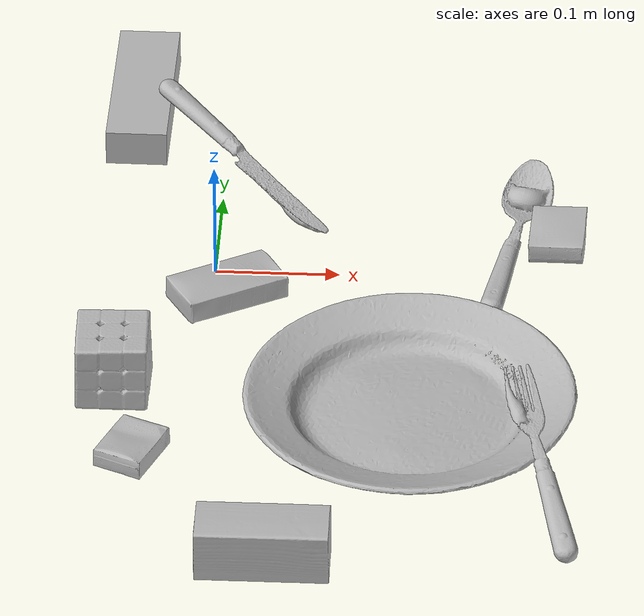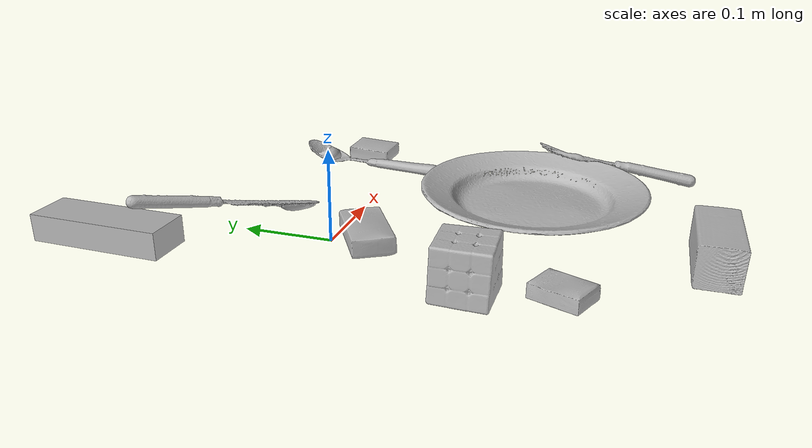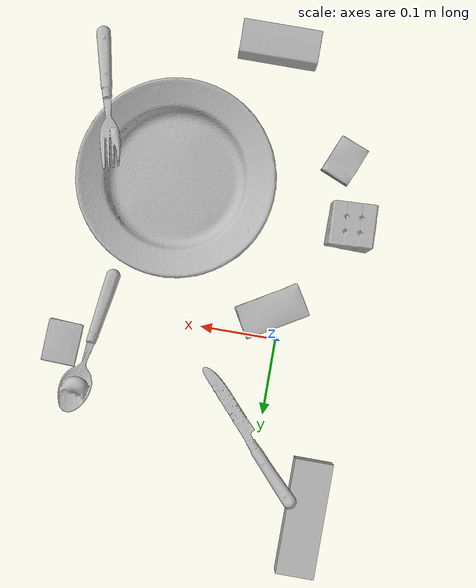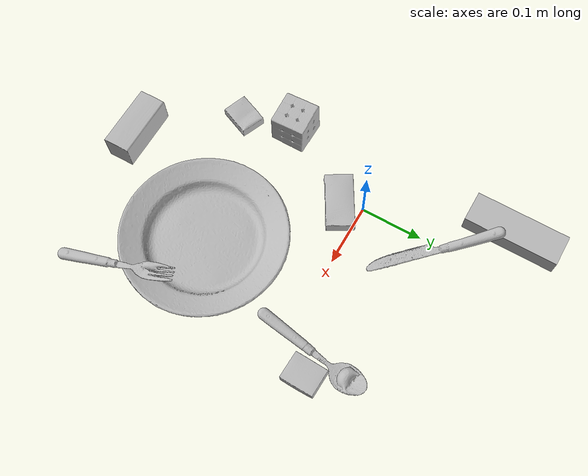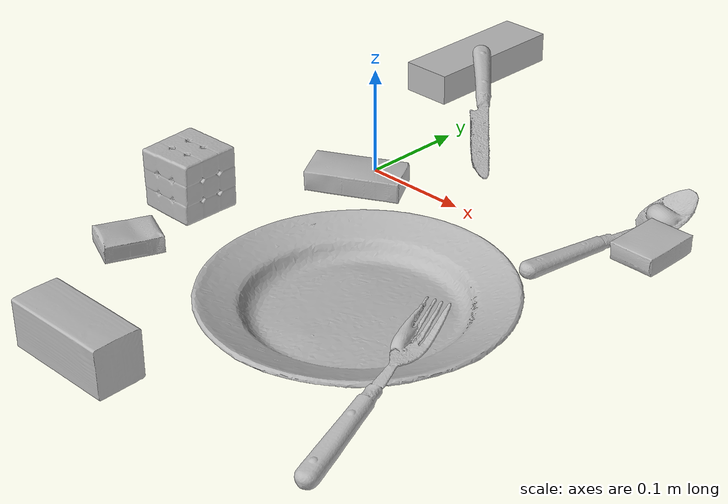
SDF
<sdf version="1.4">
  <world name="default">
    <light name="light1" type="point">
      <pose>0 0 1 0 0 0</pose>
      <diffuse>3 3 3 1</diffuse>
      <specular>3 3 3 1</specular>
    </light>
    <light name="light2" type="point">
      <pose>0 0.5 2 0 0 0</pose>
      <diffuse>1 1 1 1</diffuse>
      <specular>1 1 1 1</specular>
    </light>
    <light name="light3" type="point">
      <pose>0 0.5 2 0 0 0</pose>
      <diffuse>3 3 3 1</diffuse>
      <specular>3 3 3 1</specular>
    </light>
    <scene>
      <ambient>0.7 0.7 0.7</ambient>
    </scene>
    <model name="box11">
      <link name="link_box11">
        <collision name="default">
          <geometry>
            <mesh>
              <uri>model://cracker_box/collision_meshes/collision.obj</uri>
              <scale>0.25 0.25 0.25</scale>
            </mesh>
          </geometry>
          <surface>
            <friction>
              <ode>
                <mu>0.5</mu>
                <mu2>0.5</mu2>
              </ode>
            </friction>
          <contact>
        <ode>
            <max_vel>0</max_vel>
            <min_depth>0.0001</min_depth>
            <kp>1e8</kp>
        </ode>
    </contact></surface>
        </collision>
        <visual name="default">
          <geometry>
            <mesh>
              <uri>model://cracker_box/visual_meshes/visual.dae</uri>
              <scale>0.25 0.25 0.25</scale>
            </mesh>
          </geometry>
        </visual>
        <inertial>
          <mass>0.022244147956371307</mass>
          <pose>0.00023660442093387246 6.358561950037256e-05 -0.00042573834070935845 -0.00031620774024180285 -0.011106489600345375 0.0025467943041161943</pose>
          <inertia>
            <ixx>3.5361988e-06</ixx>
            <iyy>5.838959e-06</iyy>
            <izz>8.33273e-06</izz>
            <ixy>0</ixy>
            <ixz>0</ixz>
            <iyz>0</iyz>
          </inertia>
        </inertial>
      </link>
      <pose>-0.0495322048664093 -0.24574363231658936 0.009096031077206135 -0.014049779717464975 -0.00501658847854462 -1.9674261469025252</pose>
    </model>
    <model name="box12">
      <link name="link_box12">
        <collision name="default">
          <geometry>
            <mesh>
              <uri>model://wood_block/collision_meshes/collision.obj</uri>
              <scale>0.5 0.5 0.5</scale>
            </mesh>
          </geometry>
          <surface>
            <friction>
              <ode>
                <mu>0.5</mu>
                <mu2>0.5</mu2>
              </ode>
            </friction>
          <contact>
        <ode>
            <max_vel>0</max_vel>
            <min_depth>0.0001</min_depth>
            <kp>1e8</kp>
        </ode>
    </contact></surface>
        </collision>
        <visual name="default">
          <geometry>
            <mesh>
              <uri>model://wood_block/visual_meshes/visual.dae</uri>
              <scale>0.5 0.5 0.5</scale>
            </mesh>
          </geometry>
        </visual>
        <inertial>
          <mass>0.19826212525367737</mass>
          <pose>-2.9066577553749084e-06 -0.00028540476341731846 0.00013204291462898254 -0.05221087153268513 -0.0051926957009938435 -0.006861378574469354</pose>
          <inertia>
            <ixx>6.632619e-05</ixx>
            <iyy>0.00020952444</iyy>
            <izz>0.0002087407</izz>
            <ixy>0</ixy>
            <ixz>0</ixz>
            <iyz>0</iyz>
          </inertia>
        </inertial>
      </link>
      <pose>0.059908587485551834 -0.3779696524143219 0.0226292721927166 -0.005208509598448606 0.005718674671938656 -3.1367635709851496</pose>
    </model>
    <model name="box13">
      <link name="link_box13">
        <collision name="default">
          <geometry>
            <mesh>
              <uri>model://pudding_box/collision_meshes/collision.obj</uri>
              <scale>0.5 0.5 0.5</scale>
            </mesh>
          </geometry>
          <surface>
            <friction>
              <ode>
                <mu>0.5</mu>
                <mu2>0.5</mu2>
              </ode>
            </friction>
          <contact>
        <ode>
            <max_vel>0</max_vel>
            <min_depth>0.0001</min_depth>
            <kp>1e8</kp>
        </ode>
    </contact></surface>
        </collision>
        <visual name="default">
          <geometry>
            <mesh>
              <uri>model://pudding_box/visual_meshes/visual.dae</uri>
              <scale>0.5 0.5 0.5</scale>
            </mesh>
          </geometry>
        </visual>
        <inertial>
          <mass>0.049741584807634354</mass>
          <pose>0.00024474109522998333 0.0004033942532259971 -0.0002594413817860186 0.005213101800084814 -0.006603799174386178 0.020079821432586128</pose>
          <inertia>
            <ixx>1.4057575e-05</ixx>
            <iyy>9.458037e-06</iyy>
            <izz>2.0759684e-05</izz>
            <ixy>0</ixy>
            <ixz>0</ixz>
            <iyz>0</iyz>
          </inertia>
        </inertial>
      </link>
      <pose>0.2737978398799896 0.05060406029224396 0.009862900711596012 0.02234850651428027 -0.01139173500988565 -0.04530554644072464</pose>
    </model>
    <model name="box21">
      <link name="link_box21">
        <collision name="default">
          <geometry>
            <mesh>
              <uri>model://rubiks_cube/collision_meshes/collision.obj</uri>
              <scale>1.0 1.0 1.0</scale>
            </mesh>
          </geometry>
          <surface>
            <friction>
              <ode>
                <mu>0.5</mu>
                <mu2>0.5</mu2>
              </ode>
            </friction>
          <contact>
        <ode>
            <max_vel>0</max_vel>
            <min_depth>0.0001</min_depth>
            <kp>1e8</kp>
        </ode>
    </contact></surface>
        </collision>
        <visual name="default">
          <geometry>
            <mesh>
              <uri>model://rubiks_cube/visual_meshes/visual.dae</uri>
              <scale>1.0 1.0 1.0</scale>
            </mesh>
          </geometry>
        </visual>
        <inertial>
          <mass>0.14589080214500427</mass>
          <pose>2.6721043468569405e-05 5.256966323941015e-05 -7.264316082000732e-06 -0.054672881442690106 -0.09814117646273159 -0.034455034483302956</pose>
          <inertia>
            <ixx>8.061447e-05</ixx>
            <iyy>8.023852e-05</iyy>
            <izz>8.128248e-05</izz>
            <ixy>0</ixy>
            <ixz>0</ixz>
            <iyz>0</iyz>
          </inertia>
        </inertial>
      </link>
      <pose>-0.06979381293058395 -0.1606472134590149 0.028678972274065018 -2.614222119360487e-06 -8.591658948413239e-07 0.029357667047972578</pose>
    </model>
    <model name="box22">
      <link name="link_box22">
        <collision name="default">
          <geometry>
            <mesh>
              <uri>model://jenga/collision_meshes/collision.obj</uri>
              <scale>1.0 1.0 1.0</scale>
            </mesh>
          </geometry>
          <surface>
            <friction>
              <ode>
                <mu>0.5</mu>
                <mu2>0.5</mu2>
              </ode>
            </friction>
          <contact>
        <ode>
            <max_vel>0</max_vel>
            <min_depth>0.0001</min_depth>
            <kp>1e8</kp>
        </ode>
    </contact></surface>
        </collision>
        <visual name="default">
          <geometry>
            <mesh>
              <uri>model://jenga/visual_meshes/visual.dae</uri>
              <scale>1.0 1.0 1.0</scale>
            </mesh>
          </geometry>
        </visual>
        <inertial>
          <mass>0.13963866233825684</mass>
          <pose>-2.502855807051674e-07 -0.00010250010382151231 -4.092339804628864e-05 0.0 -7.342154049184251e-07 0.0</pose>
          <inertia>
            <ixx>3.8641407e-05</ixx>
            <iyy>0.00026183313</iyy>
            <izz>0.00027952914</izz>
            <ixy>0</ixy>
            <ixz>0</ixz>
            <iyz>0</iyz>
          </inertia>
        </inertial>
      </link>
      <pose>-0.07406064867973328 0.22131791710853577 0.015000003390014172 2.883294058556085e-07 -1.276756110418196e-07 -1.5772631992433863</pose>
    </model>
    <model name="box23">
      <link name="link_box23">
        <collision name="default">
          <geometry>
            <mesh>
              <uri>model://sugar_box/collision_meshes/collision.obj</uri>
              <scale>0.5 0.5 0.5</scale>
            </mesh>
          </geometry>
          <surface>
            <friction>
              <ode>
                <mu>0.5</mu>
                <mu2>0.5</mu2>
              </ode>
            </friction>
          <contact>
        <ode>
            <max_vel>0</max_vel>
            <min_depth>0.0001</min_depth>
            <kp>1e8</kp>
        </ode>
    </contact></surface>
        </collision>
        <visual name="default">
          <geometry>
            <mesh>
              <uri>model://sugar_box/visual_meshes/visual.dae</uri>
              <scale>0.5 0.5 0.5</scale>
            </mesh>
          </geometry>
        </visual>
        <inertial>
          <mass>0.09426560252904892</mass>
          <pose>0.0005171863595023751 1.924554817378521e-05 -0.00018182402709499002 -0.00040462606744182556 0.0010506635219056535 0.0026153790218759383</pose>
          <inertia>
            <ixx>1.963546e-05</ixx>
            <iyy>6.346583e-05</iyy>
            <izz>7.597618e-05</izz>
            <ixy>0</ixy>
            <ixz>0</ixz>
            <iyz>0</iyz>
          </inertia>
        </inertial>
      </link>
      <pose>0.011690547689795494 -0.03537660837173462 0.011399311013519764 0.0007755044323239036 -0.023432843060697997 -2.612472311429365</pose>
    </model>
    <model name="plate1">
      <link name="link_plate1">
        <collision name="default">
          <geometry>
            <mesh>
              <uri>model://plate/collision_meshes/collision.obj</uri>
              <scale>1.0 1.0 1.0</scale>
            </mesh>
          </geometry>
          <surface>
            <friction>
              <ode>
                <mu>0.5</mu>
                <mu2>0.5</mu2>
              </ode>
            </friction>
          <contact>
        <ode>
            <max_vel>0</max_vel>
            <min_depth>0.0001</min_depth>
            <kp>1e8</kp>
        </ode>
    </contact></surface>
        </collision>
        <visual name="default">
          <geometry>
            <mesh>
              <uri>model://plate/visual_meshes/visual.dae</uri>
              <scale>1.0 1.0 1.0</scale>
            </mesh>
          </geometry>
        </visual>
        <inertial>
          <mass>0.11197491735219955</mass>
          <pose>-0.0006044617621228099 0.00027825823053717613 -0.001056199544109404 0.00221882520869589 -0.003225452482750881 0.45259630068278056</pose>
          <inertia>
            <ixx>0.0005238209</ixx>
            <iyy>0.00051881076</iyy>
            <izz>0.0010245154</izz>
            <ixy>0</ixy>
            <ixz>0</ixz>
            <iyz>0</iyz>
          </inertia>
        </inertial>
      </link>
      <pose>0.1639179289340973 -0.18470542132854462 0.01373299676924944 3.265982024321796e-09 1.8850232792534124e-08 -1.4427019314234546</pose>
    </model>
    <model name="silverware1">
      <link name="link_silverware1">
        <collision name="default">
          <geometry>
            <mesh>
              <uri>model://knife/collision_meshes/collision.obj</uri>
              <scale>1.0 1.0 1.0</scale>
            </mesh>
          </geometry>
          <surface>
            <friction>
              <ode>
                <mu>0.5</mu>
                <mu2>0.5</mu2>
              </ode>
            </friction>
          <contact>
        <ode>
            <max_vel>0</max_vel>
            <min_depth>0.0001</min_depth>
            <kp>1e8</kp>
        </ode>
    </contact></surface>
        </collision>
        <visual name="default">
          <geometry>
            <mesh>
              <uri>model://knife/visual_meshes/visual.dae</uri>
              <scale>1.0 1.0 1.0</scale>
            </mesh>
          </geometry>
        </visual>
        <inertial>
          <mass>0.01465720683336258</mass>
          <pose>-0.023785248398780823 0.0015275123296305537 5.062019408796914e-05 0.07304601322977639 0.017248415474028462 -0.007409829977624996</pose>
          <inertia>
            <ixx>4.1603096e-07</ixx>
            <iyy>5.6310615e-05</iyy>
            <izz>5.6444613e-05</izz>
            <ixy>0</ixy>
            <ixz>0</ixz>
            <iyz>0</iyz>
          </inertia>
        </inertial>
      </link>
      <pose>0.013493765145540237 0.1286132037639618 0.0214395709335804 -0.1710850281174346 0.1592839822538052 -0.8402409385981899</pose>
    </model>
    <model name="silverware2">
      <link name="link_silverware2">
        <collision name="default">
          <geometry>
            <mesh>
              <uri>model://spoon/collision_meshes/collision.obj</uri>
              <scale>1.0 1.0 1.0</scale>
            </mesh>
          </geometry>
          <surface>
            <friction>
              <ode>
                <mu>0.5</mu>
                <mu2>0.5</mu2>
              </ode>
            </friction>
          <contact>
        <ode>
            <max_vel>0</max_vel>
            <min_depth>0.0001</min_depth>
            <kp>1e8</kp>
        </ode>
    </contact></surface>
        </collision>
        <visual name="default">
          <geometry>
            <mesh>
              <uri>model://spoon/visual_meshes/visual.dae</uri>
              <scale>1.0 1.0 1.0</scale>
            </mesh>
          </geometry>
        </visual>
        <inertial>
          <mass>0.03463635593652725</mass>
          <pose>-0.005526320077478886 -0.0016034176805987954 -0.0007271658396348357 0.035218626746325574 -0.03906584480927328 0.006150611928774215</pose>
          <inertia>
            <ixx>1.9265303e-06</ixx>
            <iyy>0.0001317902</iyy>
            <izz>0.00013274024</izz>
            <ixy>0</ixy>
            <ixz>0</ixz>
            <iyz>0</iyz>
          </inertia>
        </inertial>
      </link>
      <pose>0.23593276739120483 0.043316543102264404 0.008385265246033669 0.0067292195139625035 0.026892972056098686 1.4082090607661244</pose>
    </model>
    <model name="silverware3">
      <link name="link_silverware3">
        <collision name="default">
          <geometry>
            <mesh>
              <uri>model://fork/collision_meshes/collision.obj</uri>
              <scale>1.0 1.0 1.0</scale>
            </mesh>
          </geometry>
          <surface>
            <friction>
              <ode>
                <mu>0.5</mu>
                <mu2>0.5</mu2>
              </ode>
            </friction>
          <contact>
        <ode>
            <max_vel>0</max_vel>
            <min_depth>0.0001</min_depth>
            <kp>1e8</kp>
        </ode>
    </contact></surface>
        </collision>
        <visual name="default">
          <geometry>
            <mesh>
              <uri>model://fork/visual_meshes/visual.dae</uri>
              <scale>1.0 1.0 1.0</scale>
            </mesh>
          </geometry>
        </visual>
        <inertial>
          <mass>0.019285527989268303</mass>
          <pose>-0.029570043087005615 0.0004658823017962277 0.0003218861238565296 -0.013551447953525298 -0.010977835959949084 0.014453901308334693</pose>
          <inertia>
            <ixx>6.760669e-07</ixx>
            <iyy>5.0348972e-05</iyy>
            <izz>5.065136e-05</izz>
            <ixy>0</ixy>
            <ixz>0</ixz>
            <iyz>0</iyz>
          </inertia>
        </inertial>
      </link>
      <pose>0.2694631814956665 -0.2727817893028259 0.024879347532987595 0.12838503390737238 -0.18926804919614262 1.8123559640453744</pose>
    </model>
  <physics type="ode">
      <max_contacts>50</max_contacts>
      <ode>
        <solver>
          <type>quick</type>
          <iters>75</iters>
        </solver>
        <constraints>
          <contact_max_correcting_vel>0</contact_max_correcting_vel>
          <contact_surface_layer>0</contact_surface_layer>
        </constraints>
      </ode>
    </physics></world>
</sdf>
